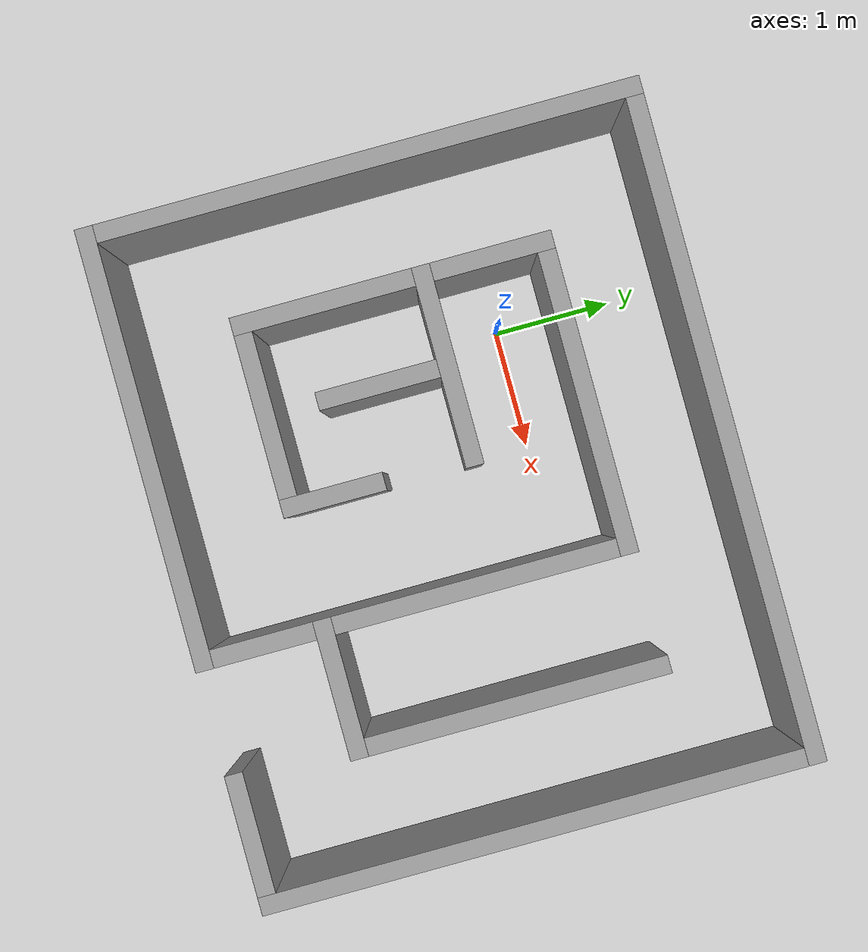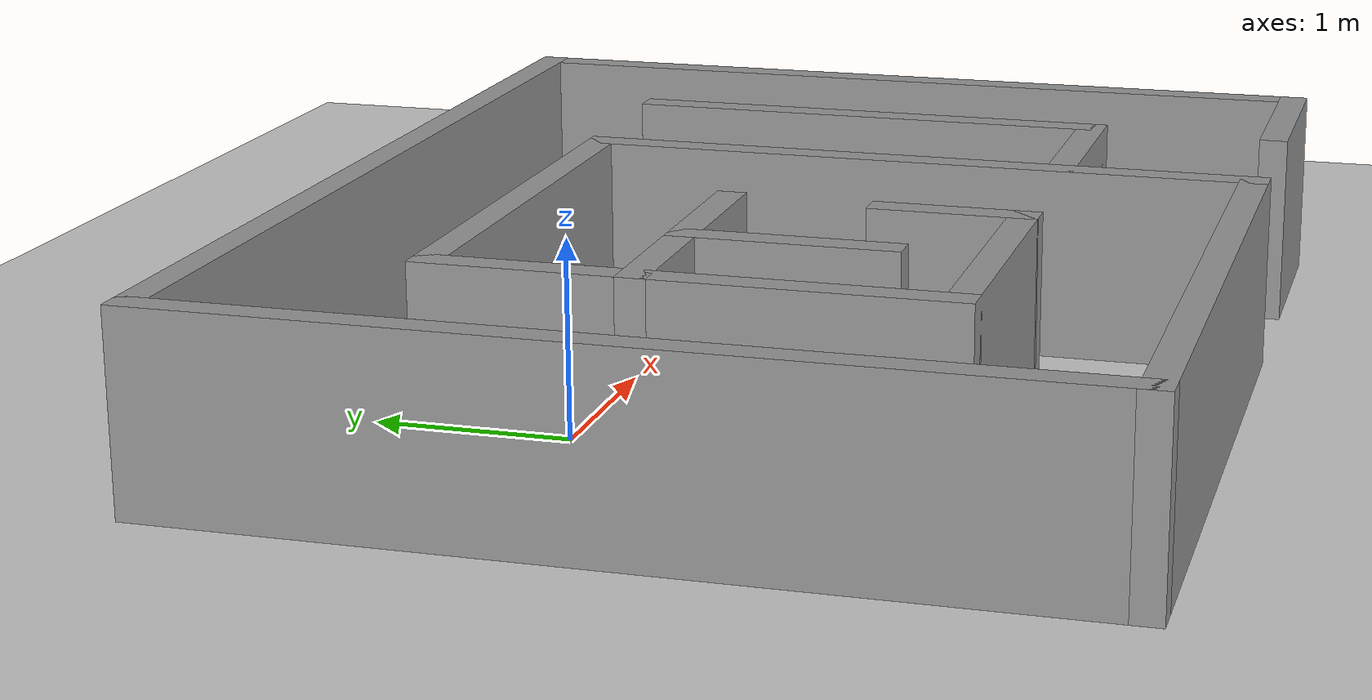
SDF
<sdf version="1.7">
 <world name="default">
  <scene><ambient>0.4 0.4 0.4 1</ambient><background>0.7 0.7 0.7 1</background><shadows>1</shadows></scene>
  <light name="sun" type="directional">
   <pose>0 0 10 0 -0 0</pose>
   <diffuse>0.8 0.8 0.8 1</diffuse>
   <specular>0.2 0.2 0.2 1</specular>
   <attenuation>
    <range>1000</range>
    <constant>0.9</constant>
    <linear>0.01</linear>
    <quadratic>0.001</quadratic>
   </attenuation>
   <direction>-0.5 0.1 -0.9</direction>
   <spot><inner_angle>0</inner_angle><outer_angle>0</outer_angle><falloff>0</falloff></spot>
  </light>
  <model name="ground_plane">
   <static>1</static>
   <link name="link">
    <collision name="collision">
     <geometry><plane><normal>0 0 1</normal><size>100 100</size></plane></geometry>
     <surface>
      <contact><collide_bitmask>65535</collide_bitmask></contact>
      <friction><ode><mu>100</mu><mu2>50</mu2></ode></friction>
     </surface>
    </collision>
    <visual name="visual">
     <cast_shadows>0</cast_shadows>
     <geometry><plane><normal>0 0 1</normal><size>100 100</size></plane></geometry>
     <material>
      <script><uri>file://media/materials/scripts/gazebo.material</uri><name>Gazebo/Grey</name></script>
     </material>
    </visual>
   </link>
  </model>
  <physics type="ode">
   <real_time_update_rate>1000</real_time_update_rate>
   <max_step_size>0.001</max_step_size>
   <real_time_factor>1</real_time_factor>
   <ode>
    <solver>
     <type>quick</type>
     <iters>150</iters>
     <precon_iters>0</precon_iters>
     <sor>1.4</sor>
     <use_dynamic_moi_rescaling>1</use_dynamic_moi_rescaling>
    </solver>
    <constraints>
     <cfm>1e-05</cfm>
     <erp>0.2</erp>
     <contact_max_correcting_vel>2000</contact_max_correcting_vel>
     <contact_surface_layer>0.01</contact_surface_layer>
    </constraints>
   </ode>
  </physics>
  <gravity>0 0 -9.8</gravity>
  <magnetic_field>6e-06 2.3e-05 -4.2e-05</magnetic_field>
  <atmosphere type="adiabatic"/>
  <spherical_coordinates>
   <surface_model>EARTH_WGS84</surface_model>
   <latitude_deg>0</latitude_deg>
   <longitude_deg>0</longitude_deg>
   <elevation>0</elevation>
   <heading_deg>0</heading_deg>
  </spherical_coordinates>
  <model name="maze_2">
   <pose>1.25 -0.75 0 0 -0 0</pose>
   <link name="Wall_0">
    <collision name="Wall_0_Collision">
     <geometry><box><size>1.65 0.15 1</size></box></geometry>
     <pose>0 0 0.5 0 -0 0</pose>
    </collision>
    <visual name="Wall_0_Visual">
     <pose>0 0 0.5 0 -0 0</pose>
     <geometry><box><size>1.65 0.15 1</size></box></geometry>
     <material>
      <script><uri>file://media/materials/scripts/gazebo.material</uri><name>Gazebo/Grey</name></script>
      <ambient>1 1 1 1</ambient>
     </material>
     <meta><layer>0</layer></meta>
    </visual>
    <pose>-1 0.25 0 0 -0 0</pose>
   </link>
   <link name="Wall_11">
    <collision name="Wall_11_Collision">
     <geometry><box><size>0.85 0.15 1</size></box></geometry>
     <pose>0 0 0.5 0 -0 0</pose>
    </collision>
    <visual name="Wall_11_Visual">
     <pose>0 0 0.5 0 -0 0</pose>
     <geometry><box><size>0.85 0.15 1</size></box></geometry>
     <material>
      <script><uri>file://media/materials/scripts/gazebo.material</uri><name>Gazebo/Grey</name></script>
      <ambient>1 1 1 1</ambient>
     </material>
     <meta><layer>0</layer></meta>
    </visual>
    <pose>-0.25 -0.9 0 0 -0 1.5708</pose>
   </link>
   <link name="Wall_13">
    <collision name="Wall_13_Collision">
     <geometry><box><size>1.15 0.15 1</size></box></geometry>
     <pose>0 0 0.5 0 -0 0</pose>
    </collision>
    <visual name="Wall_13_Visual">
     <pose>0 0 0.5 0 -0 0</pose>
     <geometry><box><size>1.15 0.15 1</size></box></geometry>
     <material>
      <script><uri>file://media/materials/scripts/gazebo.material</uri><name>Gazebo/Grey</name></script>
      <ambient>1 1 1 1</ambient>
     </material>
     <meta><layer>0</layer></meta>
    </visual>
    <pose>-1 -0.25 0 0 -0 -1.5708</pose>
   </link>
   <link name="Wall_15">
    <collision name="Wall_15_Collision">
     <geometry><box><size>3.65 0.15 1</size></box></geometry>
     <pose>0 0 0.5 0 -0 0</pose>
    </collision>
    <visual name="Wall_15_Visual">
     <pose>0 0 0.5 0 -0 0</pose>
     <geometry><box><size>3.65 0.15 1</size></box></geometry>
     <material>
      <script><uri>file://media/materials/scripts/gazebo.material</uri><name>Gazebo/Grey</name></script>
      <ambient>1 1 1 1</ambient>
     </material>
     <meta><layer>0</layer></meta>
    </visual>
    <pose>-1 -2.25 0 0 -0 3.14159</pose>
   </link>
   <link name="Wall_17">
    <collision name="Wall_17_Collision">
     <geometry><box><size>4.65 0.15 1</size></box></geometry>
     <pose>0 0 0.5 0 -0 0</pose>
    </collision>
    <visual name="Wall_17_Visual">
     <pose>0 0 0.5 0 -0 0</pose>
     <geometry><box><size>4.65 0.15 1</size></box></geometry>
     <material>
      <script><uri>file://media/materials/scripts/gazebo.material</uri><name>Gazebo/Grey</name></script>
      <ambient>1 1 1 1</ambient>
     </material>
     <meta><layer>0</layer></meta>
    </visual>
    <pose>-2.75 0 0 0 -0 1.5708</pose>
   </link>
   <link name="Wall_19">
    <collision name="Wall_19_Collision">
     <geometry><box><size>5.65 0.15 1</size></box></geometry>
     <pose>0 0 0.5 0 -0 0</pose>
    </collision>
    <visual name="Wall_19_Visual">
     <pose>0 0 0.5 0 -0 0</pose>
     <geometry><box><size>5.65 0.15 1</size></box></geometry>
     <material>
      <script><uri>file://media/materials/scripts/gazebo.material</uri><name>Gazebo/Grey</name></script>
      <ambient>1 1 1 1</ambient>
     </material>
     <meta><layer>0</layer></meta>
    </visual>
    <pose>0 2.25 0 0 -0 0</pose>
   </link>
   <link name="Wall_2">
    <collision name="Wall_2_Collision">
     <geometry><box><size>1.15 0.15 1</size></box></geometry>
     <pose>0 0 0.5 0 -0 0</pose>
    </collision>
    <visual name="Wall_2_Visual">
     <pose>0 0 0.5 0 -0 0</pose>
     <geometry><box><size>1.15 0.15 1</size></box></geometry>
     <material>
      <script><uri>file://media/materials/scripts/gazebo.material</uri><name>Gazebo/Grey</name></script>
      <ambient>1 1 1 1</ambient>
     </material>
     <meta><layer>0</layer></meta>
    </visual>
    <pose>-1.75 0.75 0 0 -0 1.5708</pose>
   </link>
   <link name="Wall_21">
    <collision name="Wall_21_Collision">
     <geometry><box><size>4.65 0.15 1</size></box></geometry>
     <pose>0 0 0.5 0 -0 0</pose>
    </collision>
    <visual name="Wall_21_Visual">
     <pose>0 0 0.5 0 -0 0</pose>
     <geometry><box><size>4.65 0.15 1</size></box></geometry>
     <material>
      <script><uri>file://media/materials/scripts/gazebo.material</uri><name>Gazebo/Grey</name></script>
      <ambient>1 1 1 1</ambient>
     </material>
     <meta><layer>0</layer></meta>
    </visual>
    <pose>2.75 0 0 0 -0 -1.5708</pose>
   </link>
   <link name="Wall_24">
    <collision name="Wall_24_Collision">
     <geometry><box><size>1.15 0.15 1</size></box></geometry>
     <pose>0 0 0.5 0 -0 0</pose>
    </collision>
    <visual name="Wall_24_Visual">
     <pose>0 0 0.5 0 -0 0</pose>
     <geometry><box><size>1.15 0.15 1</size></box></geometry>
     <material>
      <script><uri>file://media/materials/scripts/gazebo.material</uri><name>Gazebo/Grey</name></script>
      <ambient>1 1 1 1</ambient>
     </material>
     <meta><layer>0</layer></meta>
    </visual>
    <pose>2.25 -2.25 0 0 -0 3.14159</pose>
   </link>
   <link name="Wall_26">
    <collision name="Wall_26_Collision">
     <geometry><box><size>1.15 0.15 1</size></box></geometry>
     <pose>0 0 0.5 0 -0 0</pose>
    </collision>
    <visual name="Wall_26_Visual">
     <pose>0 0 0.5 0 -0 0</pose>
     <geometry><box><size>1.15 0.15 1</size></box></geometry>
     <material>
      <script><uri>file://media/materials/scripts/gazebo.material</uri><name>Gazebo/Grey</name></script>
      <ambient>1 1 1 1</ambient>
     </material>
     <meta><layer>0</layer></meta>
    </visual>
    <pose>1.25 -1.25 0 0 -0 0</pose>
   </link>
   <link name="Wall_29">
    <collision name="Wall_29_Collision">
     <geometry><box><size>2.65 0.15 1</size></box></geometry>
     <pose>0 0 0.5 0 -0 0</pose>
    </collision>
    <visual name="Wall_29_Visual">
     <pose>0 0 0.5 0 -0 0</pose>
     <geometry><box><size>2.65 0.15 1</size></box></geometry>
     <material>
      <script><uri>file://media/materials/scripts/gazebo.material</uri><name>Gazebo/Grey</name></script>
      <ambient>1 1 1 1</ambient>
     </material>
     <meta><layer>0</layer></meta>
    </visual>
    <pose>1.75 0 0 0 -0 1.5708</pose>
   </link>
   <link name="Wall_4">
    <collision name="Wall_4_Collision">
     <geometry><box><size>2.65 0.15 1</size></box></geometry>
     <pose>0 0 0.5 0 -0 0</pose>
    </collision>
    <visual name="Wall_4_Visual">
     <pose>0 0 0.5 0 -0 0</pose>
     <geometry><box><size>2.65 0.15 1</size></box></geometry>
     <material>
      <script><uri>file://media/materials/scripts/gazebo.material</uri><name>Gazebo/Grey</name></script>
      <ambient>1 1 1 1</ambient>
     </material>
     <meta><layer>0</layer></meta>
    </visual>
    <pose>-0.5 1.25 0 0 -0 0</pose>
   </link>
   <link name="Wall_5">
    <collision name="Wall_5_Collision">
     <geometry><box><size>3.65 0.15 1</size></box></geometry>
     <pose>0 0 0.5 0 -0 0</pose>
    </collision>
    <visual name="Wall_5_Visual">
     <pose>0 0 0.5 0 -0 0</pose>
     <geometry><box><size>3.65 0.15 1</size></box></geometry>
     <material>
      <script><uri>file://media/materials/scripts/gazebo.material</uri><name>Gazebo/Grey</name></script>
      <ambient>1 1 1 1</ambient>
     </material>
     <meta><layer>0</layer></meta>
    </visual>
    <pose>0.75 -0.5 0 0 -0 -1.5708</pose>
   </link>
   <link name="Wall_7">
    <collision name="Wall_7_Collision">
     <geometry><box><size>1.65 0.15 1</size></box></geometry>
     <pose>0 0 0.5 0 -0 0</pose>
    </collision>
    <visual name="Wall_7_Visual">
     <pose>0 0 0.5 0 -0 0</pose>
     <geometry><box><size>1.65 0.15 1</size></box></geometry>
     <material>
      <script><uri>file://media/materials/scripts/gazebo.material</uri><name>Gazebo/Grey</name></script>
      <ambient>1 1 1 1</ambient>
     </material>
     <meta><layer>0</layer></meta>
    </visual>
    <pose>-1.75 -0.5 0 0 -0 -1.5708</pose>
   </link>
   <link name="Wall_9">
    <collision name="Wall_9_Collision">
     <geometry><box><size>1.65 0.15 1</size></box></geometry>
     <pose>0 0 0.5 0 -0 0</pose>
    </collision>
    <visual name="Wall_9_Visual">
     <pose>0 0 0.5 0 -0 0</pose>
     <geometry><box><size>1.65 0.15 1</size></box></geometry>
     <material>
      <script><uri>file://media/materials/scripts/gazebo.material</uri><name>Gazebo/Grey</name></script>
      <ambient>1 1 1 1</ambient>
     </material>
     <meta><layer>0</layer></meta>
    </visual>
    <pose>-1 -1.25 0 0 -0 0</pose>
   </link>
   <static>1</static>
  </model>
 </world>
</sdf>
